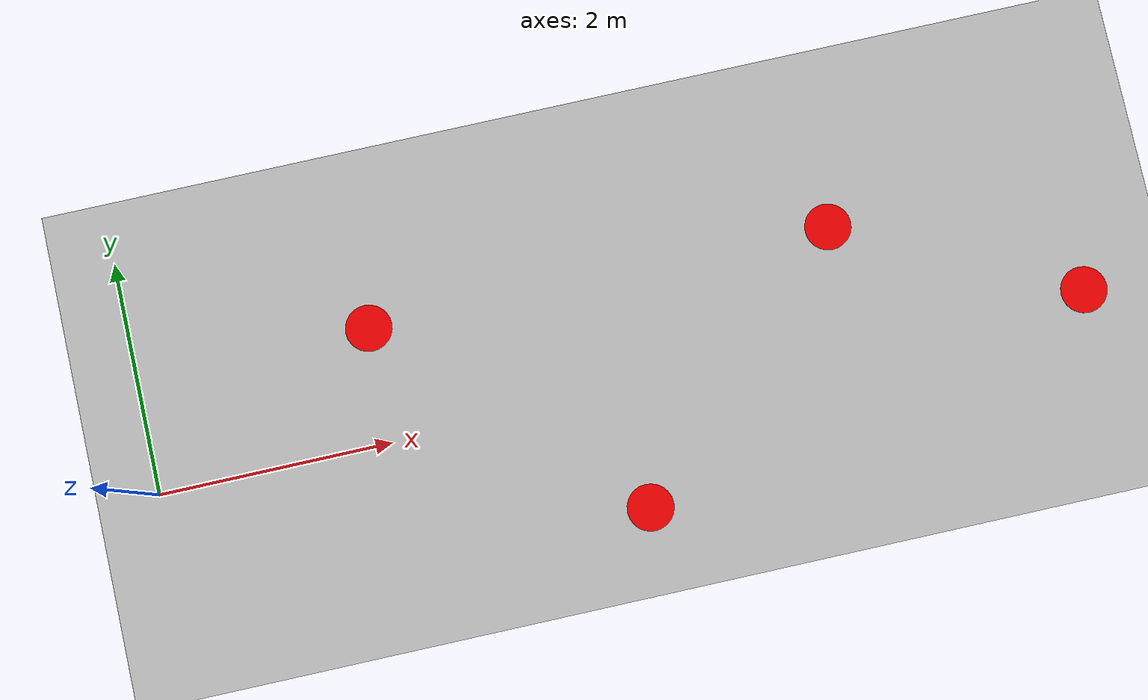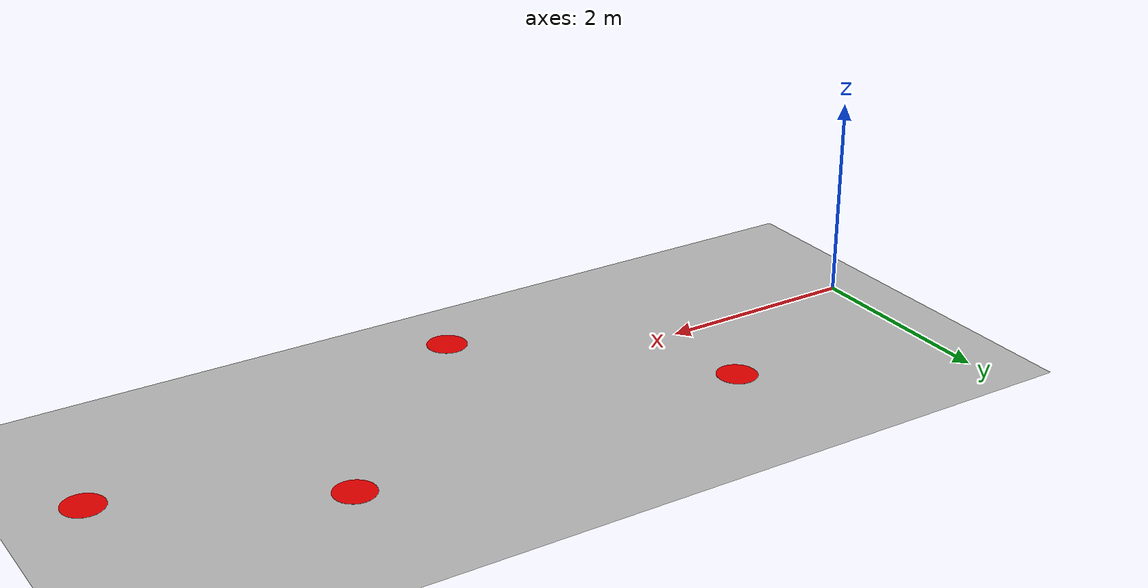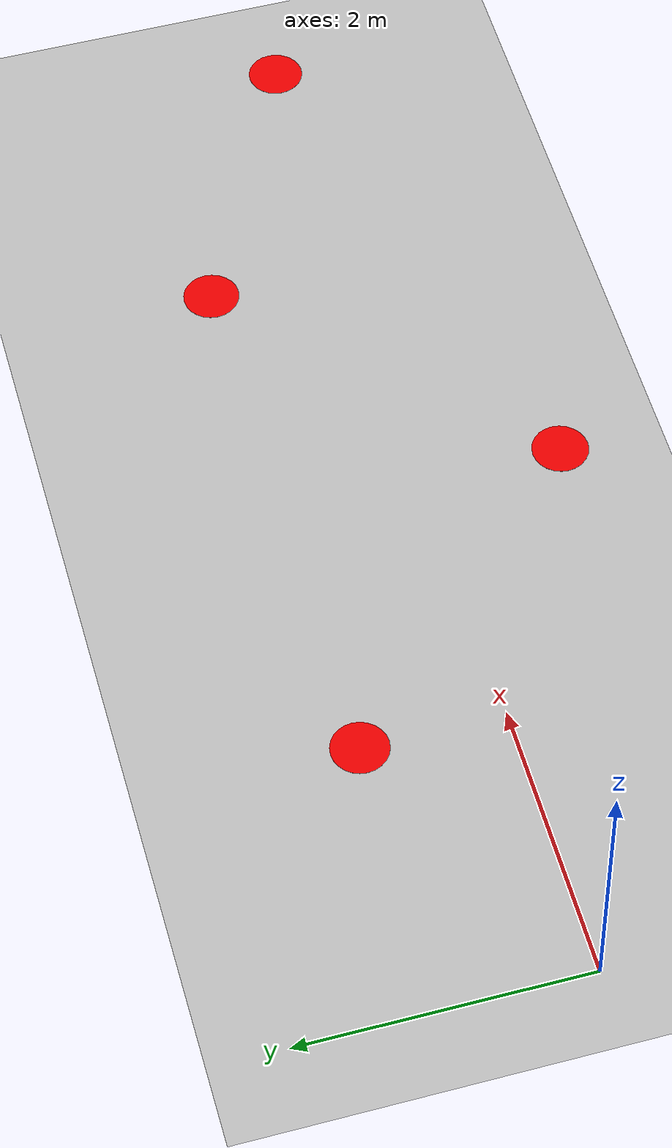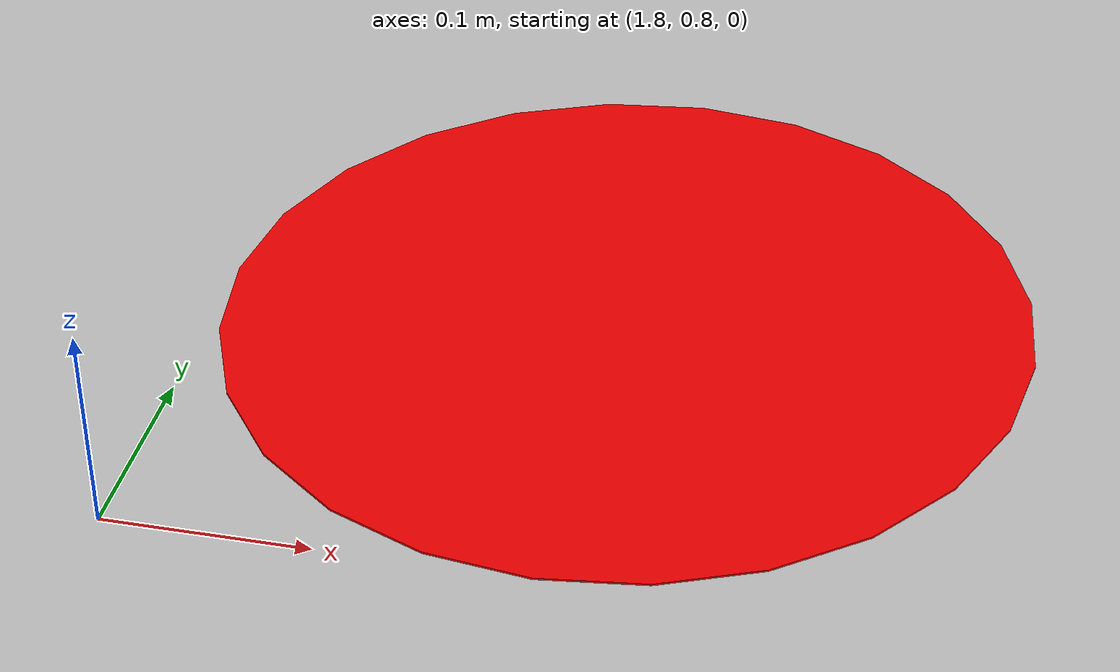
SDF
<?xml version="1.0" ?>
<sdf version="1.6">
  <world name="default">
    <include><uri>model://ground_plane</uri></include>
    <include><uri>model://sun</uri></include>

    <model name="wp1">
      <static>true</static><pose>2 1 0.001 0 0 0</pose>
      <link name="l"><visual name="v"><geometry><cylinder><radius>0.2</radius><length>0.001</length></cylinder></geometry>
      <material><ambient>1 0 0 1</ambient></material></visual></link>
    </model>
    <model name="wp2">
      <static>true</static><pose>4 -1 0.001 0 0 0</pose>
      <link name="l"><visual name="v"><geometry><cylinder><radius>0.2</radius><length>0.001</length></cylinder></geometry>
      <material><ambient>1 0 0 1</ambient></material></visual></link>
    </model>
    <model name="wp3">
      <static>true</static><pose>6 1 0.001 0 0 0</pose>
      <link name="l"><visual name="v"><geometry><cylinder><radius>0.2</radius><length>0.001</length></cylinder></geometry>
      <material><ambient>1 0 0 1</ambient></material></visual></link>
    </model>
    <model name="wp4">
      <static>true</static><pose>8 0 0.001 0 0 0</pose>
      <link name="l"><visual name="v"><geometry><cylinder><radius>0.2</radius><length>0.001</length></cylinder></geometry>
      <material><ambient>1 0 0 1</ambient></material></visual></link>
    </model>
  </world>
</sdf>
